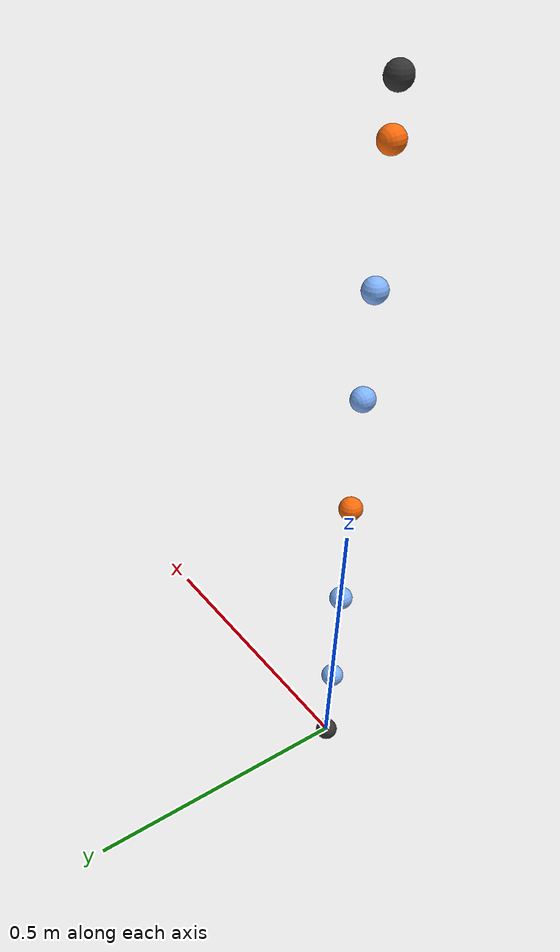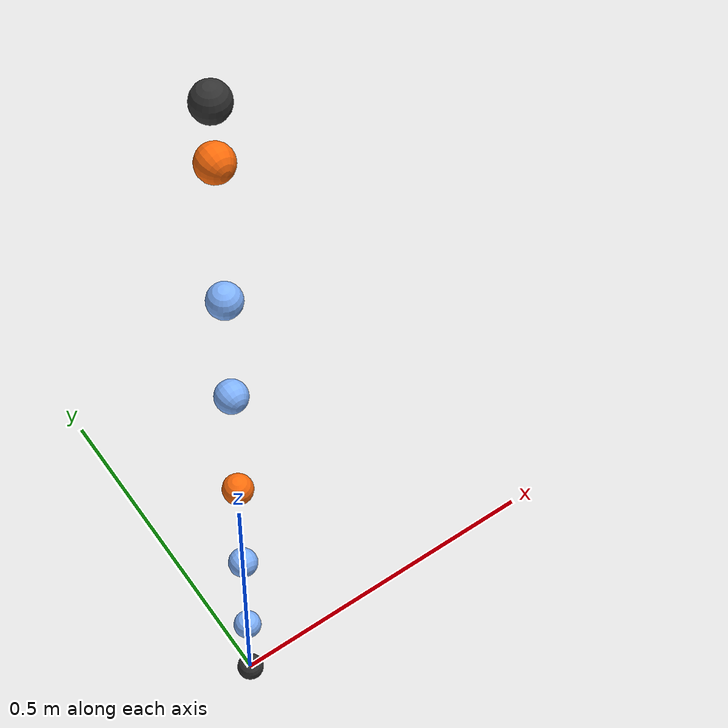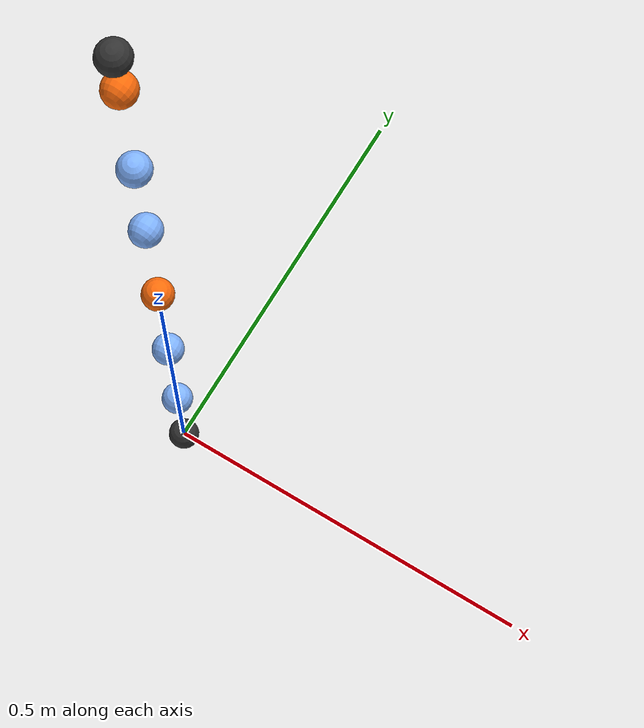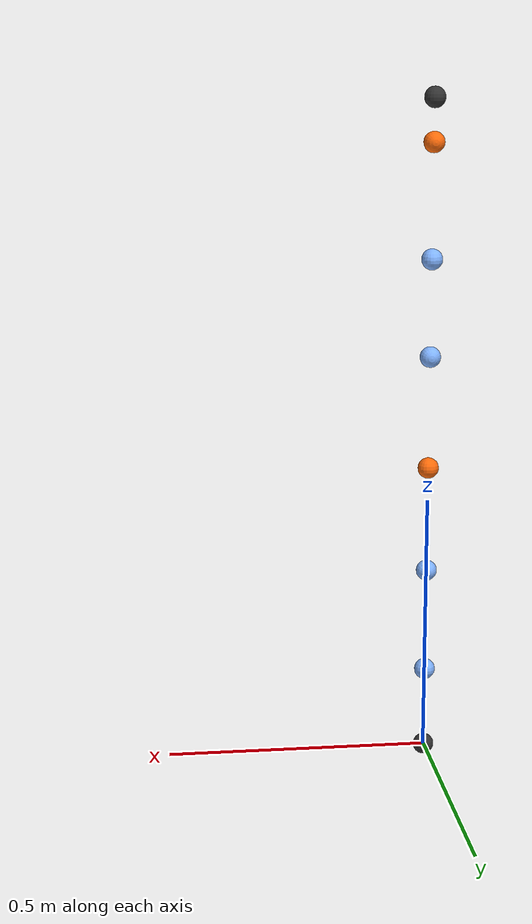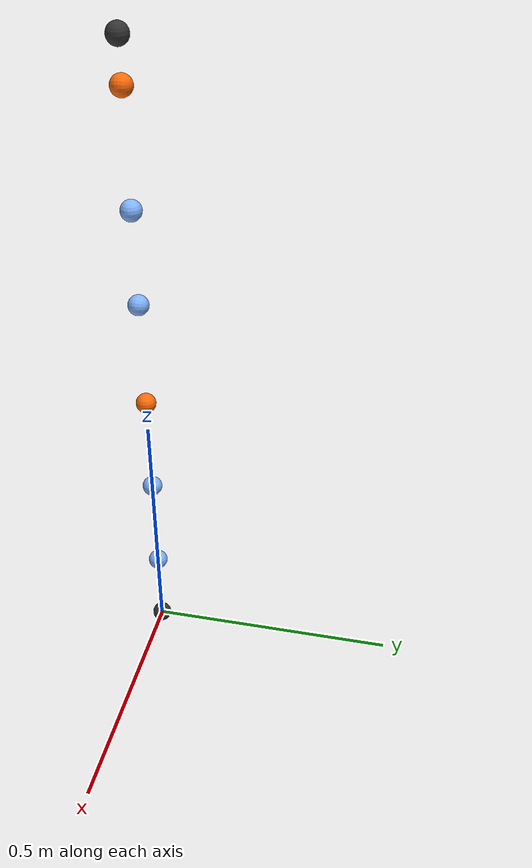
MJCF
<mujoco model="lbr_iiwa">
  <compiler angle="radian"/>
  <statistic meansize="0.172659" extent="1.49336" center="-0.00545542 0.00416953 0.609891"/>
  <worldbody>
    <geom type="sphere" rgba="0.2 0.2 0.2 1" size="0.02"/>
    <body name="lbr_iiwa_link_1" pos="0 0 0.1575">
      <inertial pos="0 -0.03 0.12" mass="4" diaginertia="0.1 0.09 0.02"/>
      <joint name="lbr_iiwa_joint_1" pos="0 0 0" axis="0 0 1" range="-2.96706 2.96706" damping="0.5"/>
      <geom type="sphere" rgba="0.5 0.7 1 1" size="0.02"/>
      <body name="lbr_iiwa_link_2" pos="0 0 0.2025" quat="0 0 0.707107 0.707107">
        <inertial pos="0.0003 0.059 0.042" quat="0.707107 0.707107 0 0" mass="4" diaginertia="0.05 0.044 0.018"/>
        <joint name="lbr_iiwa_joint_2" pos="0 0 0" axis="0 0 1" range="-2.0944 2.0944" damping="0.5"/>
        <geom type="sphere" rgba="0.5 0.7 1 1" size="0.02"/>
        <body name="lbr_iiwa_link_3" pos="0 0.2045 0" quat="0 0 0.707107 0.707107">
          <inertial pos="0 0.03 0.13" mass="3" diaginertia="0.08 0.075 0.01"/>
          <joint name="lbr_iiwa_joint_3" pos="0 0 0" axis="0 0 1" range="-2.96706 2.96706" damping="0.5"/>
          <geom type="sphere" rgba="1 0.423529 0.0392157 1" size="0.02"/>
          <body name="lbr_iiwa_link_4" pos="0 0 0.2155" quat="0.707107 0.707107 0 0">
            <inertial pos="0 0.067 0.034" quat="0.707107 0.707107 0 0" mass="2.7" diaginertia="0.03 0.029 0.01"/>
            <joint name="lbr_iiwa_joint_4" pos="0 0 0" axis="0 0 1" range="-2.0944 2.0944" damping="0.5"/>
            <geom type="sphere" rgba="0.5 0.7 1 1" size="0.02"/>
            <body name="lbr_iiwa_link_5" pos="0 0.1845 0" quat="0 0 0.707107 0.707107">
              <inertial pos="0.0001 0.021 0.076" mass="1.7" diaginertia="0.02 0.018 0.005"/>
              <joint name="lbr_iiwa_joint_5" pos="0 0 0" axis="0 0 1" range="-2.96706 2.96706" damping="0.5"/>
              <geom type="sphere" rgba="0.5 0.7 1 1" size="0.02"/>
              <body name="lbr_iiwa_link_6" pos="0 0 0.2155" quat="0.707107 0.707107 0 0">
                <inertial pos="0 0.0006 0.0004" quat="0.707107 0.707107 0 0" mass="1.8" diaginertia="0.005 0.0047 0.0036"/>
                <joint name="lbr_iiwa_joint_6" pos="0 0 0" axis="0 0 1" range="-2.0944 2.0944" damping="0.5"/>
                <geom type="sphere" rgba="1 0.423529 0.0392157 1" size="0.02"/>
                <body name="lbr_iiwa_link_7" pos="0 0.081 0" quat="0 0 0.707107 0.707107">
                  <inertial pos="0 0 0.02" mass="0.3" diaginertia="0.001 0.001 0.001"/>
                  <joint name="lbr_iiwa_joint_7" pos="0 0 0" axis="0 0 1" range="-3.05433 3.05433" damping="0.5"/>
                  <geom type="sphere" rgba="0.2 0.2 0.2 1" size="0.02"/>
                </body>
              </body>
            </body>
          </body>
        </body>
      </body>
    </body>
  </worldbody>
</mujoco>
